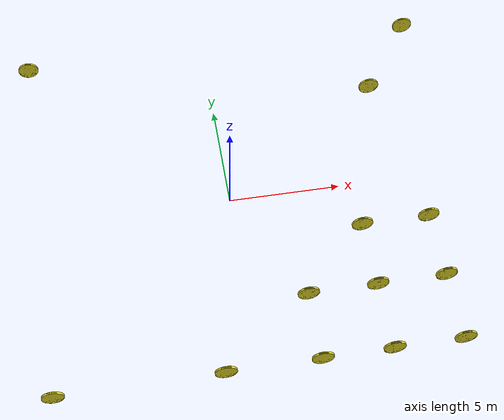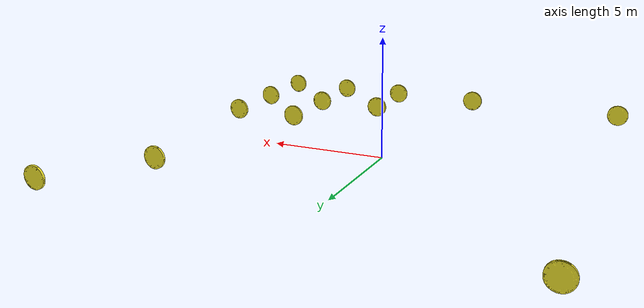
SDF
<?xml version='1.0'?>
<!-- Only put coins in this model. All the links will spin -->
<sdf version='1.4'>
  <model name='crazy_coins'>
    <static>0</static>

    <link name='coin_1'>
      <pose>7.5 5 0.6 0 0 0</pose>
      <gravity>0</gravity>
      <visual name='coin_1_Visual'>
        <pose>0 0 0 0 0 0</pose>
        <geometry>
          <mesh>
            <uri>model://crazy_coins/meshes/coin.dae</uri>
            <scale>0.4 0.4 0.4</scale>
          </mesh>
        </geometry>
        <material>
          <script>
            <uri>file://media/materials/scripts/gazebo.material</uri>
            <name>Gazebo/Yellow</name>
          </script>
        </material>
      </visual>
    </link>

    <link name='coin_2'>
      <gravity>0</gravity>
      <pose>10 8.5 0.6 0 0 0</pose>
      <visual name='coin_2_Visual'>
        <pose>0 0 0 0 0 0</pose>
        <geometry>
          <mesh>
            <uri>model://crazy_coins/meshes/coin.dae</uri>
            <scale>0.4 0.4 0.4</scale>
          </mesh>
        </geometry>
        <material>
          <script>
            <uri>file://media/materials/scripts/gazebo.material</uri>
            <name>Gazebo/Yellow</name>
          </script>
        </material>
      </visual>
    </link>

    <link name='coin_3'>
      <gravity>0</gravity>
      <pose>-8.5 8.5 0.6 0 0 0</pose>
      <visual name='coin_3_Visual'>
        <pose>0 0 0 0 0 0</pose>
        <geometry>
          <mesh>
            <uri>model://crazy_coins/meshes/coin.dae</uri>
            <scale>0.4 0.4 0.4</scale>
          </mesh>
        </geometry>
        <material>
          <script>
            <uri>file://media/materials/scripts/gazebo.material</uri>
            <name>Gazebo/Yellow</name>
          </script>
        </material>
      </visual>
    </link>

    <link name='coin_4'>
      <gravity>0</gravity>
      <pose>8.5 -8.5 0.6 0 0 0</pose>
      <visual name='coin_4_Visual'>
        <pose>0 0 0 0 0 0</pose>
        <geometry>
          <mesh>
            <uri>model://crazy_coins/meshes/coin.dae</uri>
            <scale>0.4 0.4 0.4</scale>
          </mesh>
        </geometry>
        <material>
          <script>
            <uri>file://media/materials/scripts/gazebo.material</uri>
            <name>Gazebo/Yellow</name>
          </script>
        </material>
      </visual>
    </link>

    <link name='coin_5'>
      <gravity>0</gravity>
      <pose>-8.5 -8.5 0.6 0 0 0</pose>
      <visual name='coin_5_Visual'>
        <pose>0 0 0 0 0 0</pose>
        <geometry>
          <mesh>
            <uri>model://crazy_coins/meshes/coin.dae</uri>
            <scale>0.4 0.4 0.4</scale>
          </mesh>
        </geometry>
        <material>
          <script>
            <uri>file://media/materials/scripts/gazebo.material</uri>
            <name>Gazebo/Yellow</name>
          </script>
        </material>
      </visual>
    </link>

    <link name='coin_6'>
      <gravity>0</gravity>
      <pose>5.5 -8.5 0.6 0 0 0</pose>
      <visual name='coin_6_Visual'>
        <pose>0 0 0 0 0 0</pose>
        <geometry>
          <mesh>
            <uri>model://crazy_coins/meshes/coin.dae</uri>
            <scale>0.4 0.4 0.4</scale>
          </mesh>
        </geometry>
        <material>
          <script>
            <uri>file://media/materials/scripts/gazebo.material</uri>
            <name>Gazebo/Yellow</name>
          </script>
        </material>
      </visual>
    </link>

    <link name='coin_7'>
      <gravity>0</gravity>
      <pose>2.5 -8.5 0.6 0 0 0</pose>
      <visual name='coin_7_Visual'>
        <pose>0 0 0 0 0 0</pose>
        <geometry>
          <mesh>
            <uri>model://crazy_coins/meshes/coin.dae</uri>
            <scale>0.4 0.4 0.4</scale>
          </mesh>
        </geometry>
        <material>
          <script>
            <uri>file://media/materials/scripts/gazebo.material</uri>
            <name>Gazebo/Yellow</name>
          </script>
        </material>
      </visual>
    </link>

    <link name='coin_8'>
      <gravity>0</gravity>
      <pose>-1.5 -8.5 0.6 0 0 0</pose>
      <visual name='coin_8_Visual'>
        <pose>0 0 0 0 0 0</pose>
        <geometry>
          <mesh>
            <uri>model://crazy_coins/meshes/coin.dae</uri>
            <scale>0.4 0.4 0.4</scale>
          </mesh>
        </geometry>
        <material>
          <script>
            <uri>file://media/materials/scripts/gazebo.material</uri>
            <name>Gazebo/Yellow</name>
          </script>
        </material>
      </visual>
    </link>

    <link name='coin_9'>
      <gravity>0</gravity>
      <pose>8.5 -5.5 0.6 0 0 0</pose>
      <visual name='coin_9_Visual'>
        <pose>0 0 0 0 0 0</pose>
        <geometry>
          <mesh>
            <uri>model://crazy_coins/meshes/coin.dae</uri>
            <scale>0.4 0.4 0.4</scale>
          </mesh>
        </geometry>
        <material>
          <script>
            <uri>file://media/materials/scripts/gazebo.material</uri>
            <name>Gazebo/Yellow</name>
          </script>
        </material>
      </visual>
    </link>

    <link name='coin_10'>
      <gravity>0</gravity>
      <pose>8.5 -2.5 0.6 0 0 0</pose>
      <visual name='coin_10_Visual'>
        <pose>0 0 0 0 0 0</pose>
        <geometry>
          <mesh>
            <uri>model://crazy_coins/meshes/coin.dae</uri>
            <scale>0.4 0.4 0.4</scale>
          </mesh>
        </geometry>
        <material>
          <script>
            <uri>file://media/materials/scripts/gazebo.material</uri>
            <name>Gazebo/Yellow</name>
          </script>
        </material>
      </visual>
    </link>

    <link name='coin_11'>
      <gravity>0</gravity>
      <pose>5.5 -5.5 0.6 0 0 0</pose>
      <visual name='coin_11_Visual'>
        <pose>0 0 0 0 0 0</pose>
        <geometry>
          <mesh>
            <uri>model://crazy_coins/meshes/coin.dae</uri>
            <scale>0.4 0.4 0.4</scale>
          </mesh>
        </geometry>
        <material>
          <script>
            <uri>file://media/materials/scripts/gazebo.material</uri>
            <name>Gazebo/Yellow</name>
          </script>
        </material>
      </visual>
    </link>

    <link name='coin_12'>
      <gravity>0</gravity>
      <pose>2.5 -5.5 0.6 0 0 0</pose>
      <visual name='coin_12_Visual'>
        <pose>0 0 0 0 0 0</pose>
        <geometry>
          <mesh>
            <uri>model://crazy_coins/meshes/coin.dae</uri>
            <scale>0.4 0.4 0.4</scale>
          </mesh>
        </geometry>
        <material>
          <script>
            <uri>file://media/materials/scripts/gazebo.material</uri>
            <name>Gazebo/Yellow</name>
          </script>
        </material>
      </visual>
    </link>

    <link name='coin_13'>
      <gravity>0</gravity>
      <pose>5.5 -2.5 0.6 0 0 0</pose>
      <visual name='coin_13_Visual'>
        <pose>0 0 0 0 0 0</pose>
        <geometry>
          <mesh>
            <uri>model://crazy_coins/meshes/coin.dae</uri>
            <scale>0.4 0.4 0.4</scale>
          </mesh>
        </geometry>
        <material>
          <script>
            <uri>file://media/materials/scripts/gazebo.material</uri>
            <name>Gazebo/Yellow</name>
          </script>
        </material>
      </visual>
    </link>

    <plugin name="coins_manager_plugin" filename="libcoins_manager_plugin.so" >
      <goal_coin>coin_2</goal_coin>
      <robot_name>labrob</robot_name>
      <update_rate>1.0</update_rate>
      <spin_velocity>1.570796327</spin_velocity>
    </plugin>

  </model>
</sdf>
